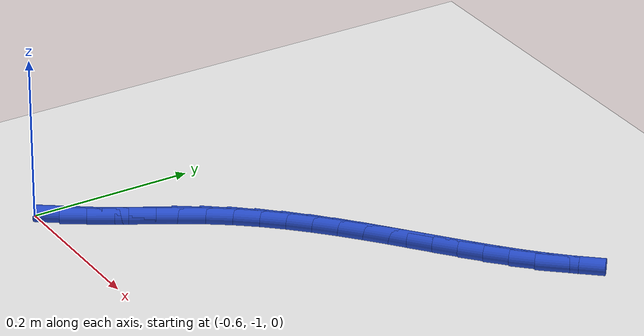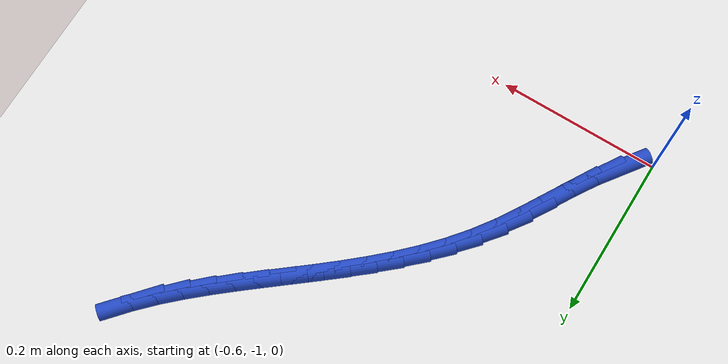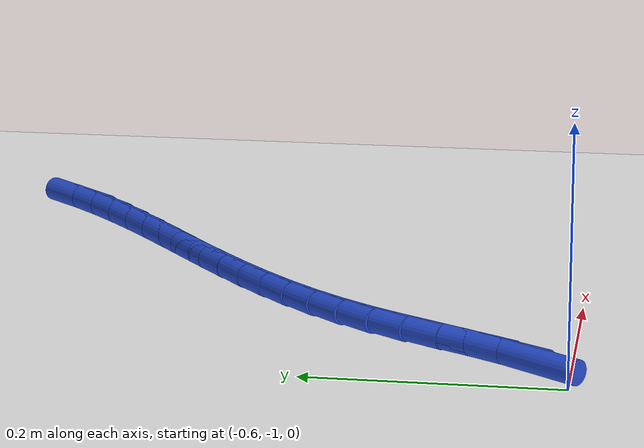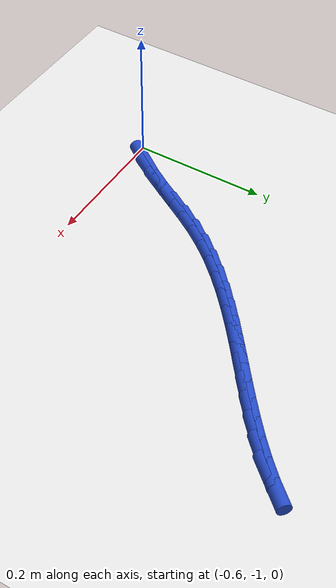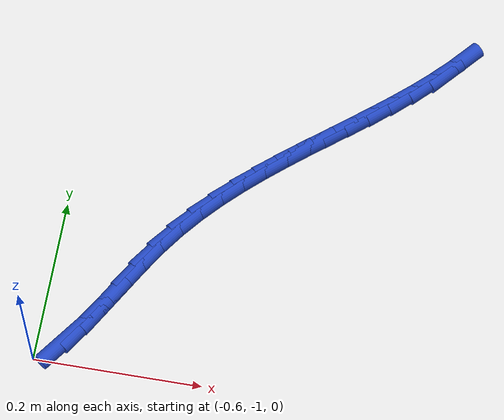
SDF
<sdf version="1.6">
 <world name="default">
  <model name="ground_plane">
   <static>1</static>
   <link name="link">
    <collision name="collision">
     <geometry><plane><normal>0 0 1</normal><size>100 100</size></plane></geometry>
     <surface><friction><ode><mu>100</mu><mu2>50</mu2></ode></friction></surface>
    </collision>
    <visual name="visual">
     <cast_shadows>0</cast_shadows>
     <geometry><plane><normal>0 0 1</normal><size>100 100</size></plane></geometry>
     <material>
      <script><uri>file://media/materials/scripts/gazebo.material</uri><name>Gazebo/WhiteGlow</name></script>
     </material>
    </visual>
   </link>
  </model>
  <model name="line">
   <link name="link_202">
    <pose>-0.5661469041939095 -0.9740140654010973 0.01 0 1.57 0.9425922562432812</pose>
    <collision name="collision">
     <geometry><cylinder><radius>0.01</radius><length>0.08</length></cylinder></geometry>
    </collision>
    <visual name="visual">
     <material>
      <script><name>Gazebo/Blue</name><uri>file://media/materials/scripts/gazebo.material</uri></script>
     </material>
     <geometry><cylinder><radius>0.01</radius><length>0.08</length></cylinder></geometry>
    </visual>
   </link>
   <link name="link_203">
    <pose>-0.5483187876133656 -0.9494698607381892 0.01 0 1.57 1.0106989167185305</pose>
    <collision name="collision">
     <geometry><cylinder><radius>0.01</radius><length>0.08</length></cylinder></geometry>
    </collision>
    <visual name="visual">
     <material>
      <script><name>Gazebo/Blue</name><uri>file://media/materials/scripts/gazebo.material</uri></script>
     </material>
     <geometry><cylinder><radius>0.01</radius><length>0.08</length></cylinder></geometry>
    </visual>
   </link>
   <link name="link_204">
    <pose>-0.5315752502875417 -0.9227692844768461 0.01 0 1.57 1.0430766918692944</pose>
    <collision name="collision">
     <geometry><cylinder><radius>0.01</radius><length>0.08</length></cylinder></geometry>
    </collision>
    <visual name="visual">
     <material>
      <script><name>Gazebo/Blue</name><uri>file://media/materials/scripts/gazebo.material</uri></script>
     </material>
     <geometry><cylinder><radius>0.01</radius><length>0.08</length></cylinder></geometry>
    </visual>
   </link>
   <link name="link_205">
    <pose>-0.5152952139452334 -0.894837885047911 0.01 0 1.57 1.0436149219216284</pose>
    <collision name="collision">
     <geometry><cylinder><radius>0.01</radius><length>0.08</length></cylinder></geometry>
    </collision>
    <visual name="visual">
     <material>
      <script><name>Gazebo/Blue</name><uri>file://media/materials/scripts/gazebo.material</uri></script>
     </material>
     <geometry><cylinder><radius>0.01</radius><length>0.08</length></cylinder></geometry>
    </visual>
   </link>
   <link name="link_206">
    <pose>-0.4988576003152366 -0.8666012108822284 0.01 0 1.57 1.0133430515500288</pose>
    <collision name="collision">
     <geometry><cylinder><radius>0.01</radius><length>0.08</length></cylinder></geometry>
    </collision>
    <visual name="visual">
     <material>
      <script><name>Gazebo/Blue</name><uri>file://media/materials/scripts/gazebo.material</uri></script>
     </material>
     <geometry><cylinder><radius>0.01</radius><length>0.08</length></cylinder></geometry>
    </visual>
   </link>
   <link name="link_207">
    <pose>-0.48164133112634683 -0.838984810410641 0.01 0 1.57 0.953926567777929</pose>
    <collision name="collision">
     <geometry><cylinder><radius>0.01</radius><length>0.08</length></cylinder></geometry>
    </collision>
    <visual name="visual">
     <material>
      <script><name>Gazebo/Blue</name><uri>file://media/materials/scripts/gazebo.material</uri></script>
     </material>
     <geometry><cylinder><radius>0.01</radius><length>0.08</length></cylinder></geometry>
    </visual>
   </link>
   <link name="link_208">
    <pose>-0.46308964614632303 -0.8128259775004406 0.01 0 1.57 0.8891940256998307</pose>
    <collision name="collision">
     <geometry><cylinder><radius>0.01</radius><length>0.08</length></cylinder></geometry>
    </collision>
    <visual name="visual">
     <material>
      <script><name>Gazebo/Blue</name><uri>file://media/materials/scripts/gazebo.material</uri></script>
     </material>
     <geometry><cylinder><radius>0.01</radius><length>0.08</length></cylinder></geometry>
    </visual>
   </link>
   <link name="link_209">
    <pose>-0.4431581066993983 -0.788259019483678 0.01 0 1.57 0.8320130163461994</pose>
    <collision name="collision">
     <geometry><cylinder><radius>0.01</radius><length>0.08</length></cylinder></geometry>
    </collision>
    <visual name="visual">
     <material>
      <script><name>Gazebo/Blue</name><uri>file://media/materials/scripts/gazebo.material</uri></script>
     </material>
     <geometry><cylinder><radius>0.01</radius><length>0.08</length></cylinder></geometry>
    </visual>
   </link>
   <link name="link_210">
    <pose>-0.42204720752611835 -0.7650821561483109 0.01 0 1.57 0.7831839577235657</pose>
    <collision name="collision">
     <geometry><cylinder><radius>0.01</radius><length>0.08</length></cylinder></geometry>
    </collision>
    <visual name="visual">
     <material>
      <script><name>Gazebo/Blue</name><uri>file://media/materials/scripts/gazebo.material</uri></script>
     </material>
     <geometry><cylinder><radius>0.01</radius><length>0.08</length></cylinder></geometry>
    </visual>
   </link>
   <link name="link_211">
    <pose>-0.3999589674753013 -0.7430915159637107 0.01 0 1.57 0.7431348730351094</pose>
    <collision name="collision">
     <geometry><cylinder><radius>0.01</radius><length>0.08</length></cylinder></geometry>
    </collision>
    <visual name="visual">
     <material>
      <script><name>Gazebo/Blue</name><uri>file://media/materials/scripts/gazebo.material</uri></script>
     </material>
     <geometry><cylinder><radius>0.01</radius><length>0.08</length></cylinder></geometry>
    </visual>
   </link>
   <link name="link_212">
    <pose>-0.3770954053957655 -0.7220832273992499 0.01 0 1.57 0.7120857540733037</pose>
    <collision name="collision">
     <geometry><cylinder><radius>0.01</radius><length>0.08</length></cylinder></geometry>
    </collision>
    <visual name="visual">
     <material>
      <script><name>Gazebo/Blue</name><uri>file://media/materials/scripts/gazebo.material</uri></script>
     </material>
     <geometry><cylinder><radius>0.01</radius><length>0.08</length></cylinder></geometry>
    </visual>
   </link>
   <link name="link_213">
    <pose>-0.35365854013632886 -0.7018534189242994 0.01 0 1.57 0.6901367579037732</pose>
    <collision name="collision">
     <geometry><cylinder><radius>0.01</radius><length>0.08</length></cylinder></geometry>
    </collision>
    <visual name="visual">
     <material>
      <script><name>Gazebo/Blue</name><uri>file://media/materials/scripts/gazebo.material</uri></script>
     </material>
     <geometry><cylinder><radius>0.01</radius><length>0.08</length></cylinder></geometry>
    </visual>
   </link>
   <link name="link_214">
    <pose>-0.32985039054580945 -0.6821982190082312 0.01 0 1.57 0.6773429124363071</pose>
    <collision name="collision">
     <geometry><cylinder><radius>0.01</radius><length>0.08</length></cylinder></geometry>
    </collision>
    <visual name="visual">
     <material>
      <script><name>Gazebo/Blue</name><uri>file://media/materials/scripts/gazebo.material</uri></script>
     </material>
     <geometry><cylinder><radius>0.01</radius><length>0.08</length></cylinder></geometry>
    </visual>
   </link>
   <link name="link_215">
    <pose>-0.30587297547302505 -0.6629137561204165 0.01 0 1.57 0.6737691484513062</pose>
    <collision name="collision">
     <geometry><cylinder><radius>0.01</radius><length>0.08</length></cylinder></geometry>
    </collision>
    <visual name="visual">
     <material>
      <script><name>Gazebo/Blue</name><uri>file://media/materials/scripts/gazebo.material</uri></script>
     </material>
     <geometry><cylinder><radius>0.01</radius><length>0.08</length></cylinder></geometry>
    </visual>
   </link>
   <link name="link_216">
    <pose>-0.281928313766795 -0.6437961587302281 0.01 0 1.57 0.6795237585607014</pose>
    <collision name="collision">
     <geometry><cylinder><radius>0.01</radius><length>0.08</length></cylinder></geometry>
    </collision>
    <visual name="visual">
     <material>
      <script><name>Gazebo/Blue</name><uri>file://media/materials/scripts/gazebo.material</uri></script>
     </material>
     <geometry><cylinder><radius>0.01</radius><length>0.08</length></cylinder></geometry>
    </visual>
   </link>
   <link name="link_217">
    <pose>-0.2582184242759366 -0.6246415553070372 0.01 0 1.57 0.6947695242430189</pose>
    <collision name="collision">
     <geometry><cylinder><radius>0.01</radius><length>0.08</length></cylinder></geometry>
    </collision>
    <visual name="visual">
     <material>
      <script><name>Gazebo/Blue</name><uri>file://media/materials/scripts/gazebo.material</uri></script>
     </material>
     <geometry><cylinder><radius>0.01</radius><length>0.08</length></cylinder></geometry>
    </visual>
   </link>
   <link name="link_218">
    <pose>-0.23494532584926836 -0.6052460743202156 0.01 0 1.57 0.7197108115200527</pose>
    <collision name="collision">
     <geometry><cylinder><radius>0.01</radius><length>0.08</length></cylinder></geometry>
    </collision>
    <visual name="visual">
     <material>
      <script><name>Gazebo/Blue</name><uri>file://media/materials/scripts/gazebo.material</uri></script>
     </material>
     <geometry><cylinder><radius>0.01</radius><length>0.08</length></cylinder></geometry>
    </visual>
   </link>
   <link name="link_219">
    <pose>-0.2123110373356081 -0.5854058442391348 0.01 0 1.57 0.7545532245559643</pose>
    <collision name="collision">
     <geometry><cylinder><radius>0.01</radius><length>0.08</length></cylinder></geometry>
    </collision>
    <visual name="visual">
     <material>
      <script><name>Gazebo/Blue</name><uri>file://media/materials/scripts/gazebo.material</uri></script>
     </material>
     <geometry><cylinder><radius>0.01</radius><length>0.08</length></cylinder></geometry>
    </visual>
   </link>
   <link name="link_220">
    <pose>-0.19051757758377408 -0.5649169935331668 0.01 0 1.57 0.7994315325089821</pose>
    <collision name="collision">
     <geometry><cylinder><radius>0.01</radius><length>0.08</length></cylinder></geometry>
    </collision>
    <visual name="visual">
     <material>
      <script><name>Gazebo/Blue</name><uri>file://media/materials/scripts/gazebo.material</uri></script>
     </material>
     <geometry><cylinder><radius>0.01</radius><length>0.08</length></cylinder></geometry>
    </visual>
   </link>
   <link name="link_221">
    <pose>-0.16976696544258446 -0.543575650671683 0.01 0 1.57 0.854303761163935</pose>
    <collision name="collision">
     <geometry><cylinder><radius>0.01</radius><length>0.08</length></cylinder></geometry>
    </collision>
    <visual name="visual">
     <material>
      <script><name>Gazebo/Blue</name><uri>file://media/materials/scripts/gazebo.material</uri></script>
     </material>
     <geometry><cylinder><radius>0.01</radius><length>0.08</length></cylinder></geometry>
    </visual>
   </link>
  </model>
 </world>
</sdf>
